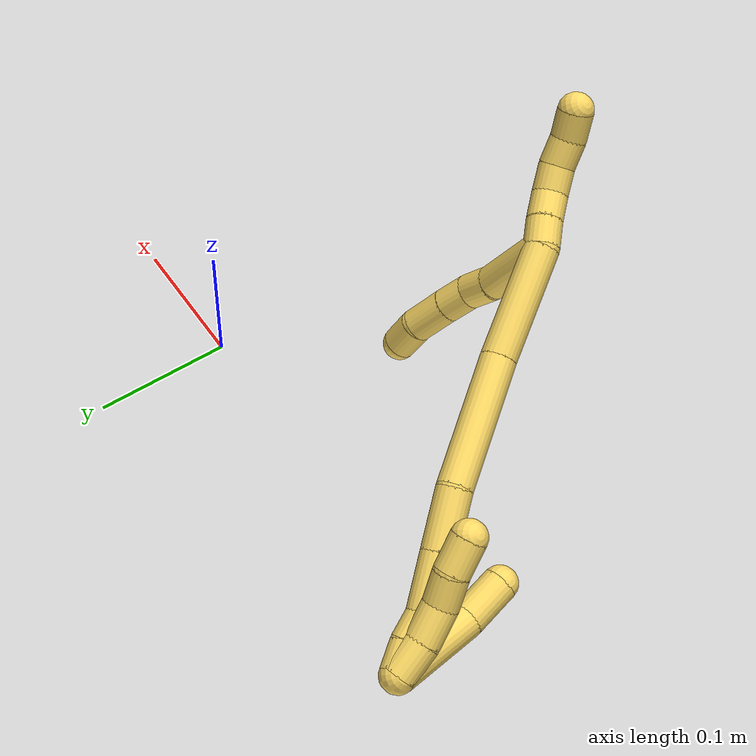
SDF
<sdf version="1.7">
 <world name="default">
  <model name="5">
   <static>0</static>
   <link name="5">
    <collision name="collision-cylinder-e_1_2_8">
     <pose>-0.003751 0.001268 -0.026195 -3.09322 -0.142048 2.48604</pose>
     <geometry><cylinder><radius>0.0125</radius><length>0.052985</length></cylinder></geometry>
     <surface>
      <friction><ode><mu>1.16</mu><mu2>1.16</mu2><slip1>0</slip1><slip2>0</slip2></ode></friction>
      <contact><ode><kp>1e+06</kp><kd>1</kd><max_vel>0</max_vel><min_depth>0.001</min_depth></ode></contact>
     </surface>
    </collision>
    <visual name="visual-cylinder-e_1_2_8">
     <pose>-0.003751 0.001268 -0.026195 -3.09322 -0.142048 2.48604</pose>
     <geometry><cylinder><radius>0.0125</radius><length>0.052985</length></cylinder></geometry>
     <material><ambient>1 0.858824 0.4 1</ambient></material>
    </visual>
    <collision name="collision-cylinder-e_2_8_9">
     <pose>-0.007248 0.004055 -0.063465 -3.00534 0.022608 -0.328377</pose>
     <geometry><cylinder><radius>0.0125</radius><length>0.022362</length></cylinder></geometry>
     <surface>
      <friction><ode><mu>1.16</mu><mu2>1.16</mu2><slip1>0</slip1><slip2>0</slip2></ode></friction>
      <contact><ode><kp>1e+06</kp><kd>1</kd><max_vel>0</max_vel><min_depth>0.001</min_depth></ode></contact>
     </surface>
    </collision>
    <visual name="visual-cylinder-e_2_8_9">
     <pose>-0.007248 0.004055 -0.063465 -3.00534 0.022608 -0.328377</pose>
     <geometry><cylinder><radius>0.0125</radius><length>0.022362</length></cylinder></geometry>
     <material><ambient>1 0.858824 0.4 1</ambient></material>
    </visual>
    <collision name="collision-cylinder-e_3_9_10">
     <pose>-0.009413 0.008691 -0.084582 -2.8405 -0.225936 1.2843</pose>
     <geometry><cylinder><radius>0.0125</radius><length>0.021579</length></cylinder></geometry>
     <surface>
      <friction><ode><mu>1.16</mu><mu2>1.16</mu2><slip1>0</slip1><slip2>0</slip2></ode></friction>
      <contact><ode><kp>1e+06</kp><kd>1</kd><max_vel>0</max_vel><min_depth>0.001</min_depth></ode></contact>
     </surface>
    </collision>
    <visual name="visual-cylinder-e_3_9_10">
     <pose>-0.009413 0.008691 -0.084582 -2.8405 -0.225936 1.2843</pose>
     <geometry><cylinder><radius>0.0125</radius><length>0.021579</length></cylinder></geometry>
     <material><ambient>1 0.858824 0.4 1</ambient></material>
    </visual>
    <collision name="collision-cylinder-e_4_10_11">
     <pose>-0.015593 0.015816 -0.10841 -2.8588 -0.256327 1.47149</pose>
     <geometry><cylinder><radius>0.0125</radius><length>0.029683</length></cylinder></geometry>
     <surface>
      <friction><ode><mu>1.16</mu><mu2>1.16</mu2><slip1>0</slip1><slip2>0</slip2></ode></friction>
      <contact><ode><kp>1e+06</kp><kd>1</kd><max_vel>0</max_vel><min_depth>0.001</min_depth></ode></contact>
     </surface>
    </collision>
    <visual name="visual-cylinder-e_4_10_11">
     <pose>-0.015593 0.015816 -0.10841 -2.8588 -0.256327 1.47149</pose>
     <geometry><cylinder><radius>0.0125</radius><length>0.029683</length></cylinder></geometry>
     <material><ambient>1 0.858824 0.4 1</ambient></material>
    </visual>
    <collision name="collision-cylinder-e_5_11_6">
     <pose>-0.022733 0.019857 -0.133393 -3.13849 -0.293001 3.12054</pose>
     <geometry><cylinder><radius>0.0125</radius><length>0.023391</length></cylinder></geometry>
     <surface>
      <friction><ode><mu>1.16</mu><mu2>1.16</mu2><slip1>0</slip1><slip2>0</slip2></ode></friction>
      <contact><ode><kp>1e+06</kp><kd>1</kd><max_vel>0</max_vel><min_depth>0.001</min_depth></ode></contact>
     </surface>
    </collision>
    <visual name="visual-cylinder-e_5_11_6">
     <pose>-0.022733 0.019857 -0.133393 -3.13849 -0.293001 3.12054</pose>
     <geometry><cylinder><radius>0.0125</radius><length>0.023391</length></cylinder></geometry>
     <material><ambient>1 0.858824 0.4 1</ambient></material>
    </visual>
    <collision name="collision-cylinder-e_1_2_12">
     <pose>0.009778 -0.001959 0.000747 1.20657 1.35958 1.01626</pose>
     <geometry><cylinder><radius>0.0125</radius><length>0.02</length></cylinder></geometry>
     <surface>
      <friction><ode><mu>1.16</mu><mu2>1.16</mu2><slip1>0</slip1><slip2>0</slip2></ode></friction>
      <contact><ode><kp>1e+06</kp><kd>1</kd><max_vel>0</max_vel><min_depth>0.001</min_depth></ode></contact>
     </surface>
    </collision>
    <visual name="visual-cylinder-e_1_2_12">
     <pose>0.009778 -0.001959 0.000747 1.20657 1.35958 1.01626</pose>
     <geometry><cylinder><radius>0.0125</radius><length>0.02</length></cylinder></geometry>
     <material><ambient>1 0.858824 0.4 1</ambient></material>
    </visual>
    <collision name="collision-cylinder-e_2_12_13">
     <pose>0.029132 -0.006641 0.002432 1.23909 1.27859 0.975099</pose>
     <geometry><cylinder><radius>0.0125</radius><length>0.02</length></cylinder></geometry>
     <surface>
      <friction><ode><mu>1.16</mu><mu2>1.16</mu2><slip1>0</slip1><slip2>0</slip2></ode></friction>
      <contact><ode><kp>1e+06</kp><kd>1</kd><max_vel>0</max_vel><min_depth>0.001</min_depth></ode></contact>
     </surface>
    </collision>
    <visual name="visual-cylinder-e_2_12_13">
     <pose>0.029132 -0.006641 0.002432 1.23909 1.27859 0.975099</pose>
     <geometry><cylinder><radius>0.0125</radius><length>0.02</length></cylinder></geometry>
     <material><ambient>1 0.858824 0.4 1</ambient></material>
    </visual>
    <collision name="collision-cylinder-e_3_13_14">
     <pose>0.047849 -0.010386 0.007293 0.254621 1.15343 0.166143</pose>
     <geometry><cylinder><radius>0.0125</radius><length>0.02</length></cylinder></geometry>
     <surface>
      <friction><ode><mu>1.16</mu><mu2>1.16</mu2><slip1>0</slip1><slip2>0</slip2></ode></friction>
      <contact><ode><kp>1e+06</kp><kd>1</kd><max_vel>0</max_vel><min_depth>0.001</min_depth></ode></contact>
     </surface>
    </collision>
    <visual name="visual-cylinder-e_3_13_14">
     <pose>0.047849 -0.010386 0.007293 0.254621 1.15343 0.166143</pose>
     <geometry><cylinder><radius>0.0125</radius><length>0.02</length></cylinder></geometry>
     <material><ambient>1 0.858824 0.4 1</ambient></material>
    </visual>
    <collision name="collision-cylinder-e_4_14_15">
     <pose>0.064671 -0.012276 0.017561 0.136126 0.875732 0.063808</pose>
     <geometry><cylinder><radius>0.0125</radius><length>0.02</length></cylinder></geometry>
     <surface>
      <friction><ode><mu>1.16</mu><mu2>1.16</mu2><slip1>0</slip1><slip2>0</slip2></ode></friction>
      <contact><ode><kp>1e+06</kp><kd>1</kd><max_vel>0</max_vel><min_depth>0.001</min_depth></ode></contact>
     </surface>
    </collision>
    <visual name="visual-cylinder-e_4_14_15">
     <pose>0.064671 -0.012276 0.017561 0.136126 0.875732 0.063808</pose>
     <geometry><cylinder><radius>0.0125</radius><length>0.02</length></cylinder></geometry>
     <material><ambient>1 0.858824 0.4 1</ambient></material>
    </visual>
    <collision name="collision-cylinder-e_5_15_5">
     <pose>0.079425 -0.01157 0.030796 -0.224751 0.785781 -0.093471</pose>
     <geometry><cylinder><radius>0.0125</radius><length>0.02</length></cylinder></geometry>
     <surface>
      <friction><ode><mu>1.16</mu><mu2>1.16</mu2><slip1>0</slip1><slip2>0</slip2></ode></friction>
      <contact><ode><kp>1e+06</kp><kd>1</kd><max_vel>0</max_vel><min_depth>0.001</min_depth></ode></contact>
     </surface>
    </collision>
    <visual name="visual-cylinder-e_5_15_5">
     <pose>0.079425 -0.01157 0.030796 -0.224751 0.785781 -0.093471</pose>
     <geometry><cylinder><radius>0.0125</radius><length>0.02</length></cylinder></geometry>
     <material><ambient>1 0.858824 0.4 1</ambient></material>
    </visual>
    <collision name="collision-cylinder-e_1_2_16">
     <pose>-0.036655 0.013345 -0.011564 -2.28478 -1.12186 1.88444</pose>
     <geometry><cylinder><radius>0.0125</radius><length>0.081373</length></cylinder></geometry>
     <surface>
      <friction><ode><mu>1.16</mu><mu2>1.16</mu2><slip1>0</slip1><slip2>0</slip2></ode></friction>
      <contact><ode><kp>1e+06</kp><kd>1</kd><max_vel>0</max_vel><min_depth>0.001</min_depth></ode></contact>
     </surface>
    </collision>
    <visual name="visual-cylinder-e_1_2_16">
     <pose>-0.036655 0.013345 -0.011564 -2.28478 -1.12186 1.88444</pose>
     <geometry><cylinder><radius>0.0125</radius><length>0.081373</length></cylinder></geometry>
     <material><ambient>1 0.858824 0.4 1</ambient></material>
    </visual>
    <collision name="collision-cylinder-e_2_16_17">
     <pose>-0.116247 0.042995 -0.031184 -2.02978 -1.17016 1.63494</pose>
     <geometry><cylinder><radius>0.0125</radius><length>0.09326</length></cylinder></geometry>
     <surface>
      <friction><ode><mu>1.16</mu><mu2>1.16</mu2><slip1>0</slip1><slip2>0</slip2></ode></friction>
      <contact><ode><kp>1e+06</kp><kd>1</kd><max_vel>0</max_vel><min_depth>0.001</min_depth></ode></contact>
     </surface>
    </collision>
    <visual name="visual-cylinder-e_2_16_17">
     <pose>-0.116247 0.042995 -0.031184 -2.02978 -1.17016 1.63494</pose>
     <geometry><cylinder><radius>0.0125</radius><length>0.09326</length></cylinder></geometry>
     <material><ambient>1 0.858824 0.4 1</ambient></material>
    </visual>
    <collision name="collision-cylinder-e_3_17_18">
     <pose>-0.179409 0.06349 -0.044847 -2.49957 -1.23764 2.26791</pose>
     <geometry><cylinder><radius>0.0125</radius><length>0.042802</length></cylinder></geometry>
     <surface>
      <friction><ode><mu>1.16</mu><mu2>1.16</mu2><slip1>0</slip1><slip2>0</slip2></ode></friction>
      <contact><ode><kp>1e+06</kp><kd>1</kd><max_vel>0</max_vel><min_depth>0.001</min_depth></ode></contact>
     </surface>
    </collision>
    <visual name="visual-cylinder-e_3_17_18">
     <pose>-0.179409 0.06349 -0.044847 -2.49957 -1.23764 2.26791</pose>
     <geometry><cylinder><radius>0.0125</radius><length>0.042802</length></cylinder></geometry>
     <material><ambient>1 0.858824 0.4 1</ambient></material>
    </visual>
    <collision name="collision-cylinder-e_4_18_19">
     <pose>-0.219081 0.071923 -0.055309 -2.42369 -1.25057 2.18298</pose>
     <geometry><cylinder><radius>0.0125</radius><length>0.040978</length></cylinder></geometry>
     <surface>
      <friction><ode><mu>1.16</mu><mu2>1.16</mu2><slip1>0</slip1><slip2>0</slip2></ode></friction>
      <contact><ode><kp>1e+06</kp><kd>1</kd><max_vel>0</max_vel><min_depth>0.001</min_depth></ode></contact>
     </surface>
    </collision>
    <visual name="visual-cylinder-e_4_18_19">
     <pose>-0.219081 0.071923 -0.055309 -2.42369 -1.25057 2.18298</pose>
     <geometry><cylinder><radius>0.0125</radius><length>0.040978</length></cylinder></geometry>
     <material><ambient>1 0.858824 0.4 1</ambient></material>
    </visual>
    <collision name="collision-cylinder-e_5_19_20">
     <pose>-0.247235 0.081027 -0.063117 -2.11628 -0.992251 1.53173</pose>
     <geometry><cylinder><radius>0.0125</radius><length>0.020799</length></cylinder></geometry>
     <surface>
      <friction><ode><mu>1.16</mu><mu2>1.16</mu2><slip1>0</slip1><slip2>0</slip2></ode></friction>
      <contact><ode><kp>1e+06</kp><kd>1</kd><max_vel>0</max_vel><min_depth>0.001</min_depth></ode></contact>
     </surface>
    </collision>
    <visual name="visual-cylinder-e_5_19_20">
     <pose>-0.247235 0.081027 -0.063117 -2.11628 -0.992251 1.53173</pose>
     <geometry><cylinder><radius>0.0125</radius><length>0.020799</length></cylinder></geometry>
     <material><ambient>1 0.858824 0.4 1</ambient></material>
    </visual>
    <collision name="collision-cylinder-e_6_20_1">
     <pose>-0.265469 0.089754 -0.067597 -1.94745 -1.15931 1.53308</pose>
     <geometry><cylinder><radius>0.0125</radius><length>0.020788</length></cylinder></geometry>
     <surface>
      <friction><ode><mu>1.16</mu><mu2>1.16</mu2><slip1>0</slip1><slip2>0</slip2></ode></friction>
      <contact><ode><kp>1e+06</kp><kd>1</kd><max_vel>0</max_vel><min_depth>0.001</min_depth></ode></contact>
     </surface>
    </collision>
    <visual name="visual-cylinder-e_6_20_1">
     <pose>-0.265469 0.089754 -0.067597 -1.94745 -1.15931 1.53308</pose>
     <geometry><cylinder><radius>0.0125</radius><length>0.020788</length></cylinder></geometry>
     <material><ambient>1 0.858824 0.4 1</ambient></material>
    </visual>
    <collision name="collision-cylinder-e_1_1_21">
     <pose>-0.257329 0.065744 -0.068456 1.54677 0.56472 0.55199</pose>
     <geometry><cylinder><radius>0.0125</radius><length>0.066017</length></cylinder></geometry>
     <surface>
      <friction><ode><mu>1.16</mu><mu2>1.16</mu2><slip1>0</slip1><slip2>0</slip2></ode></friction>
      <contact><ode><kp>1e+06</kp><kd>1</kd><max_vel>0</max_vel><min_depth>0.001</min_depth></ode></contact>
     </surface>
    </collision>
    <visual name="visual-cylinder-e_1_1_21">
     <pose>-0.257329 0.065744 -0.068456 1.54677 0.56472 0.55199</pose>
     <geometry><cylinder><radius>0.0125</radius><length>0.066017</length></cylinder></geometry>
     <material><ambient>1 0.858824 0.4 1</ambient></material>
    </visual>
    <collision name="collision-cylinder-e_2_21_4">
     <pose>-0.228138 0.026305 -0.06308 1.18431 0.745515 0.514434</pose>
     <geometry><cylinder><radius>0.0125</radius><length>0.033983</length></cylinder></geometry>
     <surface>
      <friction><ode><mu>1.16</mu><mu2>1.16</mu2><slip1>0</slip1><slip2>0</slip2></ode></friction>
      <contact><ode><kp>1e+06</kp><kd>1</kd><max_vel>0</max_vel><min_depth>0.001</min_depth></ode></contact>
     </surface>
    </collision>
    <visual name="visual-cylinder-e_2_21_4">
     <pose>-0.228138 0.026305 -0.06308 1.18431 0.745515 0.514434</pose>
     <geometry><cylinder><radius>0.0125</radius><length>0.033983</length></cylinder></geometry>
     <material><ambient>1 0.858824 0.4 1</ambient></material>
    </visual>
    <collision name="collision-cylinder-e_1_1_22">
     <pose>-0.265367 0.087757 -0.062939 0.758466 0.846163 0.35511</pose>
     <geometry><cylinder><radius>0.0125</radius><length>0.025717</length></cylinder></geometry>
     <surface>
      <friction><ode><mu>1.16</mu><mu2>1.16</mu2><slip1>0</slip1><slip2>0</slip2></ode></friction>
      <contact><ode><kp>1e+06</kp><kd>1</kd><max_vel>0</max_vel><min_depth>0.001</min_depth></ode></contact>
     </surface>
    </collision>
    <visual name="visual-cylinder-e_1_1_22">
     <pose>-0.265367 0.087757 -0.062939 0.758466 0.846163 0.35511</pose>
     <geometry><cylinder><radius>0.0125</radius><length>0.025717</length></cylinder></geometry>
     <material><ambient>1 0.858824 0.4 1</ambient></material>
    </visual>
    <collision name="collision-cylinder-e_2_22_23">
     <pose>-0.244832 0.078006 -0.0505 0.556401 0.97705 0.301297</pose>
     <geometry><cylinder><radius>0.0125</radius><length>0.026319</length></cylinder></geometry>
     <surface>
      <friction><ode><mu>1.16</mu><mu2>1.16</mu2><slip1>0</slip1><slip2>0</slip2></ode></friction>
      <contact><ode><kp>1e+06</kp><kd>1</kd><max_vel>0</max_vel><min_depth>0.001</min_depth></ode></contact>
     </surface>
    </collision>
    <visual name="visual-cylinder-e_2_22_23">
     <pose>-0.244832 0.078006 -0.0505 0.556401 0.97705 0.301297</pose>
     <geometry><cylinder><radius>0.0125</radius><length>0.026319</length></cylinder></geometry>
     <material><ambient>1 0.858824 0.4 1</ambient></material>
    </visual>
    <collision name="collision-cylinder-e_3_23_24">
     <pose>-0.224826 0.073935 -0.037263 0.026234 0.915948 0.012932</pose>
     <geometry><cylinder><radius>0.0125</radius><length>0.022944</length></cylinder></geometry>
     <surface>
      <friction><ode><mu>1.16</mu><mu2>1.16</mu2><slip1>0</slip1><slip2>0</slip2></ode></friction>
      <contact><ode><kp>1e+06</kp><kd>1</kd><max_vel>0</max_vel><min_depth>0.001</min_depth></ode></contact>
     </surface>
    </collision>
    <visual name="visual-cylinder-e_3_23_24">
     <pose>-0.224826 0.073935 -0.037263 0.026234 0.915948 0.012932</pose>
     <geometry><cylinder><radius>0.0125</radius><length>0.022944</length></cylinder></geometry>
     <material><ambient>1 0.858824 0.4 1</ambient></material>
    </visual>
    <collision name="collision-cylinder-e_4_24_3">
     <pose>-0.20568 0.070953 -0.023371 0.38489 0.93249 0.195498</pose>
     <geometry><cylinder><radius>0.0125</radius><length>0.02502</length></cylinder></geometry>
     <surface>
      <friction><ode><mu>1.16</mu><mu2>1.16</mu2><slip1>0</slip1><slip2>0</slip2></ode></friction>
      <contact><ode><kp>1e+06</kp><kd>1</kd><max_vel>0</max_vel><min_depth>0.001</min_depth></ode></contact>
     </surface>
    </collision>
    <visual name="visual-cylinder-e_4_24_3">
     <pose>-0.20568 0.070953 -0.023371 0.38489 0.93249 0.195498</pose>
     <geometry><cylinder><radius>0.0125</radius><length>0.02502</length></cylinder></geometry>
     <material><ambient>1 0.858824 0.4 1</ambient></material>
    </visual>
    <collision name="collision-sphere-3">
     <pose>-0.195633 0.068154 -0.016462 0 -0 0</pose>
     <geometry><sphere><radius>0.0125</radius></sphere></geometry>
     <surface>
      <friction><ode><mu>1.16</mu><mu2>1.16</mu2><slip1>0</slip1><slip2>0</slip2></ode></friction>
      <contact><ode><kp>1e+06</kp><kd>1</kd><max_vel>0</max_vel><min_depth>0.001</min_depth></ode></contact>
     </surface>
    </collision>
    <visual name="visual-sphere-3">
     <pose>-0.195633 0.068154 -0.016462 0 -0 0</pose>
     <geometry><sphere><radius>0.0125</radius></sphere></geometry>
     <material><ambient>1 0.858824 0.4 1</ambient></material>
    </visual>
    <collision name="collision-sphere-24">
     <pose>-0.215727 0.073751 -0.030279 0 -0 0</pose>
     <geometry><sphere><radius>0.0125</radius></sphere></geometry>
     <surface>
      <friction><ode><mu>1.16</mu><mu2>1.16</mu2><slip1>0</slip1><slip2>0</slip2></ode></friction>
      <contact><ode><kp>1e+06</kp><kd>1</kd><max_vel>0</max_vel><min_depth>0.001</min_depth></ode></contact>
     </surface>
    </collision>
    <visual name="visual-sphere-24">
     <pose>-0.215727 0.073751 -0.030279 0 -0 0</pose>
     <geometry><sphere><radius>0.0125</radius></sphere></geometry>
     <material><ambient>1 0.858824 0.4 1</ambient></material>
    </visual>
    <collision name="collision-sphere-23">
     <pose>-0.233924 0.074118 -0.044248 0 -0 0</pose>
     <geometry><sphere><radius>0.0125</radius></sphere></geometry>
     <surface>
      <friction><ode><mu>1.16</mu><mu2>1.16</mu2><slip1>0</slip1><slip2>0</slip2></ode></friction>
      <contact><ode><kp>1e+06</kp><kd>1</kd><max_vel>0</max_vel><min_depth>0.001</min_depth></ode></contact>
     </surface>
    </collision>
    <visual name="visual-sphere-23">
     <pose>-0.233924 0.074118 -0.044248 0 -0 0</pose>
     <geometry><sphere><radius>0.0125</radius></sphere></geometry>
     <material><ambient>1 0.858824 0.4 1</ambient></material>
    </visual>
    <collision name="collision-sphere-22">
     <pose>-0.255739 0.081895 -0.056752 0 -0 0</pose>
     <geometry><sphere><radius>0.0125</radius></sphere></geometry>
     <surface>
      <friction><ode><mu>1.16</mu><mu2>1.16</mu2><slip1>0</slip1><slip2>0</slip2></ode></friction>
      <contact><ode><kp>1e+06</kp><kd>1</kd><max_vel>0</max_vel><min_depth>0.001</min_depth></ode></contact>
     </surface>
    </collision>
    <visual name="visual-sphere-22">
     <pose>-0.255739 0.081895 -0.056752 0 -0 0</pose>
     <geometry><sphere><radius>0.0125</radius></sphere></geometry>
     <material><ambient>1 0.858824 0.4 1</ambient></material>
    </visual>
    <collision name="collision-sphere-4">
     <pose>-0.216612 0.014742 -0.058375 0 -0 0</pose>
     <geometry><sphere><radius>0.0125</radius></sphere></geometry>
     <surface>
      <friction><ode><mu>1.16</mu><mu2>1.16</mu2><slip1>0</slip1><slip2>0</slip2></ode></friction>
      <contact><ode><kp>1e+06</kp><kd>1</kd><max_vel>0</max_vel><min_depth>0.001</min_depth></ode></contact>
     </surface>
    </collision>
    <visual name="visual-sphere-4">
     <pose>-0.216612 0.014742 -0.058375 0 -0 0</pose>
     <geometry><sphere><radius>0.0125</radius></sphere></geometry>
     <material><ambient>1 0.858824 0.4 1</ambient></material>
    </visual>
    <collision name="collision-sphere-21">
     <pose>-0.239664 0.037868 -0.067786 0 -0 0</pose>
     <geometry><sphere><radius>0.0125</radius></sphere></geometry>
     <surface>
      <friction><ode><mu>1.16</mu><mu2>1.16</mu2><slip1>0</slip1><slip2>0</slip2></ode></friction>
      <contact><ode><kp>1e+06</kp><kd>1</kd><max_vel>0</max_vel><min_depth>0.001</min_depth></ode></contact>
     </surface>
    </collision>
    <visual name="visual-sphere-21">
     <pose>-0.239664 0.037868 -0.067786 0 -0 0</pose>
     <geometry><sphere><radius>0.0125</radius></sphere></geometry>
     <material><ambient>1 0.858824 0.4 1</ambient></material>
    </visual>
    <collision name="collision-sphere-1">
     <pose>-0.274995 0.09362 -0.069126 0 -0 0</pose>
     <geometry><sphere><radius>0.0125</radius></sphere></geometry>
     <surface>
      <friction><ode><mu>1.16</mu><mu2>1.16</mu2><slip1>0</slip1><slip2>0</slip2></ode></friction>
      <contact><ode><kp>1e+06</kp><kd>1</kd><max_vel>0</max_vel><min_depth>0.001</min_depth></ode></contact>
     </surface>
    </collision>
    <visual name="visual-sphere-1">
     <pose>-0.274995 0.09362 -0.069126 0 -0 0</pose>
     <geometry><sphere><radius>0.0125</radius></sphere></geometry>
     <material><ambient>1 0.858824 0.4 1</ambient></material>
    </visual>
    <collision name="collision-sphere-6">
     <pose>-0.026111 0.019892 -0.14459 0 -0 0</pose>
     <geometry><sphere><radius>0.0125</radius></sphere></geometry>
     <surface>
      <friction><ode><mu>1.16</mu><mu2>1.16</mu2><slip1>0</slip1><slip2>0</slip2></ode></friction>
      <contact><ode><kp>1e+06</kp><kd>1</kd><max_vel>0</max_vel><min_depth>0.001</min_depth></ode></contact>
     </surface>
    </collision>
    <visual name="visual-sphere-6">
     <pose>-0.026111 0.019892 -0.14459 0 -0 0</pose>
     <geometry><sphere><radius>0.0125</radius></sphere></geometry>
     <material><ambient>1 0.858824 0.4 1</ambient></material>
    </visual>
    <collision name="collision-sphere-11">
     <pose>-0.019355 0.019822 -0.122197 0 -0 0</pose>
     <geometry><sphere><radius>0.0125</radius></sphere></geometry>
     <surface>
      <friction><ode><mu>1.16</mu><mu2>1.16</mu2><slip1>0</slip1><slip2>0</slip2></ode></friction>
      <contact><ode><kp>1e+06</kp><kd>1</kd><max_vel>0</max_vel><min_depth>0.001</min_depth></ode></contact>
     </surface>
    </collision>
    <visual name="visual-sphere-11">
     <pose>-0.019355 0.019822 -0.122197 0 -0 0</pose>
     <geometry><sphere><radius>0.0125</radius></sphere></geometry>
     <material><ambient>1 0.858824 0.4 1</ambient></material>
    </visual>
    <collision name="collision-sphere-10">
     <pose>-0.01183 0.01181 -0.094624 0 -0 0</pose>
     <geometry><sphere><radius>0.0125</radius></sphere></geometry>
     <surface>
      <friction><ode><mu>1.16</mu><mu2>1.16</mu2><slip1>0</slip1><slip2>0</slip2></ode></friction>
      <contact><ode><kp>1e+06</kp><kd>1</kd><max_vel>0</max_vel><min_depth>0.001</min_depth></ode></contact>
     </surface>
    </collision>
    <visual name="visual-sphere-10">
     <pose>-0.01183 0.01181 -0.094624 0 -0 0</pose>
     <geometry><sphere><radius>0.0125</radius></sphere></geometry>
     <material><ambient>1 0.858824 0.4 1</ambient></material>
    </visual>
    <collision name="collision-sphere-9">
     <pose>-0.006996 0.005573 -0.074539 0 -0 0</pose>
     <geometry><sphere><radius>0.0125</radius></sphere></geometry>
     <surface>
      <friction><ode><mu>1.16</mu><mu2>1.16</mu2><slip1>0</slip1><slip2>0</slip2></ode></friction>
      <contact><ode><kp>1e+06</kp><kd>1</kd><max_vel>0</max_vel><min_depth>0.001</min_depth></ode></contact>
     </surface>
    </collision>
    <visual name="visual-sphere-9">
     <pose>-0.006996 0.005573 -0.074539 0 -0 0</pose>
     <geometry><sphere><radius>0.0125</radius></sphere></geometry>
     <material><ambient>1 0.858824 0.4 1</ambient></material>
    </visual>
    <collision name="collision-sphere-2">
     <geometry><sphere><radius>0.0125</radius></sphere></geometry>
     <surface>
      <friction><ode><mu>1.16</mu><mu2>1.16</mu2><slip1>0</slip1><slip2>0</slip2></ode></friction>
      <contact><ode><kp>1e+06</kp><kd>1</kd><max_vel>0</max_vel><min_depth>0.001</min_depth></ode></contact>
     </surface>
    </collision>
    <visual name="visual-sphere-2">
     <geometry><sphere><radius>0.0125</radius></sphere></geometry>
     <material><ambient>1 0.858824 0.4 1</ambient></material>
    </visual>
    <collision name="collision-sphere-19">
     <pose>-0.238528 0.076166 -0.060167 0 -0 0</pose>
     <geometry><sphere><radius>0.0125</radius></sphere></geometry>
     <surface>
      <friction><ode><mu>1.16</mu><mu2>1.16</mu2><slip1>0</slip1><slip2>0</slip2></ode></friction>
      <contact><ode><kp>1e+06</kp><kd>1</kd><max_vel>0</max_vel><min_depth>0.001</min_depth></ode></contact>
     </surface>
    </collision>
    <visual name="visual-sphere-19">
     <pose>-0.238528 0.076166 -0.060167 0 -0 0</pose>
     <geometry><sphere><radius>0.0125</radius></sphere></geometry>
     <material><ambient>1 0.858824 0.4 1</ambient></material>
    </visual>
    <collision name="collision-sphere-8">
     <pose>-0.007501 0.002536 -0.05239 0 -0 0</pose>
     <geometry><sphere><radius>0.0125</radius></sphere></geometry>
     <surface>
      <friction><ode><mu>1.16</mu><mu2>1.16</mu2><slip1>0</slip1><slip2>0</slip2></ode></friction>
      <contact><ode><kp>1e+06</kp><kd>1</kd><max_vel>0</max_vel><min_depth>0.001</min_depth></ode></contact>
     </surface>
    </collision>
    <visual name="visual-sphere-8">
     <pose>-0.007501 0.002536 -0.05239 0 -0 0</pose>
     <geometry><sphere><radius>0.0125</radius></sphere></geometry>
     <material><ambient>1 0.858824 0.4 1</ambient></material>
    </visual>
    <collision name="collision-sphere-12">
     <pose>0.019556 -0.003918 0.001494 0 -0 0</pose>
     <geometry><sphere><radius>0.0125</radius></sphere></geometry>
     <surface>
      <friction><ode><mu>1.16</mu><mu2>1.16</mu2><slip1>0</slip1><slip2>0</slip2></ode></friction>
      <contact><ode><kp>1e+06</kp><kd>1</kd><max_vel>0</max_vel><min_depth>0.001</min_depth></ode></contact>
     </surface>
    </collision>
    <visual name="visual-sphere-12">
     <pose>0.019556 -0.003918 0.001494 0 -0 0</pose>
     <geometry><sphere><radius>0.0125</radius></sphere></geometry>
     <material><ambient>1 0.858824 0.4 1</ambient></material>
    </visual>
    <collision name="collision-sphere-13">
     <pose>0.038708 -0.009365 0.00337 0 -0 0</pose>
     <geometry><sphere><radius>0.0125</radius></sphere></geometry>
     <surface>
      <friction><ode><mu>1.16</mu><mu2>1.16</mu2><slip1>0</slip1><slip2>0</slip2></ode></friction>
      <contact><ode><kp>1e+06</kp><kd>1</kd><max_vel>0</max_vel><min_depth>0.001</min_depth></ode></contact>
     </surface>
    </collision>
    <visual name="visual-sphere-13">
     <pose>0.038708 -0.009365 0.00337 0 -0 0</pose>
     <geometry><sphere><radius>0.0125</radius></sphere></geometry>
     <material><ambient>1 0.858824 0.4 1</ambient></material>
    </visual>
    <collision name="collision-sphere-14">
     <pose>0.056991 -0.011407 0.011216 0 -0 0</pose>
     <geometry><sphere><radius>0.0125</radius></sphere></geometry>
     <surface>
      <friction><ode><mu>1.16</mu><mu2>1.16</mu2><slip1>0</slip1><slip2>0</slip2></ode></friction>
      <contact><ode><kp>1e+06</kp><kd>1</kd><max_vel>0</max_vel><min_depth>0.001</min_depth></ode></contact>
     </surface>
    </collision>
    <visual name="visual-sphere-14">
     <pose>0.056991 -0.011407 0.011216 0 -0 0</pose>
     <geometry><sphere><radius>0.0125</radius></sphere></geometry>
     <material><ambient>1 0.858824 0.4 1</ambient></material>
    </visual>
    <collision name="collision-sphere-15">
     <pose>0.072351 -0.013145 0.023906 0 -0 0</pose>
     <geometry><sphere><radius>0.0125</radius></sphere></geometry>
     <surface>
      <friction><ode><mu>1.16</mu><mu2>1.16</mu2><slip1>0</slip1><slip2>0</slip2></ode></friction>
      <contact><ode><kp>1e+06</kp><kd>1</kd><max_vel>0</max_vel><min_depth>0.001</min_depth></ode></contact>
     </surface>
    </collision>
    <visual name="visual-sphere-15">
     <pose>0.072351 -0.013145 0.023906 0 -0 0</pose>
     <geometry><sphere><radius>0.0125</radius></sphere></geometry>
     <material><ambient>1 0.858824 0.4 1</ambient></material>
    </visual>
    <collision name="collision-sphere-5">
     <pose>0.086499 -0.009995 0.037687 0 -0 0</pose>
     <geometry><sphere><radius>0.0125</radius></sphere></geometry>
     <surface>
      <friction><ode><mu>1.16</mu><mu2>1.16</mu2><slip1>0</slip1><slip2>0</slip2></ode></friction>
      <contact><ode><kp>1e+06</kp><kd>1</kd><max_vel>0</max_vel><min_depth>0.001</min_depth></ode></contact>
     </surface>
    </collision>
    <visual name="visual-sphere-5">
     <pose>0.086499 -0.009995 0.037687 0 -0 0</pose>
     <geometry><sphere><radius>0.0125</radius></sphere></geometry>
     <material><ambient>1 0.858824 0.4 1</ambient></material>
    </visual>
    <collision name="collision-sphere-16">
     <pose>-0.07331 0.026691 -0.023127 0 -0 0</pose>
     <geometry><sphere><radius>0.0125</radius></sphere></geometry>
     <surface>
      <friction><ode><mu>1.16</mu><mu2>1.16</mu2><slip1>0</slip1><slip2>0</slip2></ode></friction>
      <contact><ode><kp>1e+06</kp><kd>1</kd><max_vel>0</max_vel><min_depth>0.001</min_depth></ode></contact>
     </surface>
    </collision>
    <visual name="visual-sphere-16">
     <pose>-0.07331 0.026691 -0.023127 0 -0 0</pose>
     <geometry><sphere><radius>0.0125</radius></sphere></geometry>
     <material><ambient>1 0.858824 0.4 1</ambient></material>
    </visual>
    <collision name="collision-sphere-17">
     <pose>-0.159185 0.059299 -0.039241 0 -0 0</pose>
     <geometry><sphere><radius>0.0125</radius></sphere></geometry>
     <surface>
      <friction><ode><mu>1.16</mu><mu2>1.16</mu2><slip1>0</slip1><slip2>0</slip2></ode></friction>
      <contact><ode><kp>1e+06</kp><kd>1</kd><max_vel>0</max_vel><min_depth>0.001</min_depth></ode></contact>
     </surface>
    </collision>
    <visual name="visual-sphere-17">
     <pose>-0.159185 0.059299 -0.039241 0 -0 0</pose>
     <geometry><sphere><radius>0.0125</radius></sphere></geometry>
     <material><ambient>1 0.858824 0.4 1</ambient></material>
    </visual>
    <collision name="collision-sphere-18">
     <pose>-0.199634 0.067681 -0.050452 0 -0 0</pose>
     <geometry><sphere><radius>0.0125</radius></sphere></geometry>
     <surface>
      <friction><ode><mu>1.16</mu><mu2>1.16</mu2><slip1>0</slip1><slip2>0</slip2></ode></friction>
      <contact><ode><kp>1e+06</kp><kd>1</kd><max_vel>0</max_vel><min_depth>0.001</min_depth></ode></contact>
     </surface>
    </collision>
    <visual name="visual-sphere-18">
     <pose>-0.199634 0.067681 -0.050452 0 -0 0</pose>
     <geometry><sphere><radius>0.0125</radius></sphere></geometry>
     <material><ambient>1 0.858824 0.4 1</ambient></material>
    </visual>
    <collision name="collision-sphere-20">
     <pose>-0.255942 0.085888 -0.066068 0 -0 0</pose>
     <geometry><sphere><radius>0.0125</radius></sphere></geometry>
     <surface>
      <friction><ode><mu>1.16</mu><mu2>1.16</mu2><slip1>0</slip1><slip2>0</slip2></ode></friction>
      <contact><ode><kp>1e+06</kp><kd>1</kd><max_vel>0</max_vel><min_depth>0.001</min_depth></ode></contact>
     </surface>
    </collision>
    <visual name="visual-sphere-20">
     <pose>-0.255942 0.085888 -0.066068 0 -0 0</pose>
     <geometry><sphere><radius>0.0125</radius></sphere></geometry>
     <material><ambient>1 0.858824 0.4 1</ambient></material>
    </visual>
    <inertial>
     <pose>-0.115195 0.037 -0.04213 0 -0 0</pose>
     <mass>0.75</mass>
     <inertia><ixx>8.4e-05</ixx><ixy>0</ixy><ixz>0</ixz><iyy>0.000238</iyy><iyz>0</iyz><izz>7.2e-05</izz></inertia>
    </inertial>
   </link>
   <pose>-0.133255 -0.17788 0.129885 0.523575 -0.343362 -0.51458</pose>
  </model>
 </world>
</sdf>
